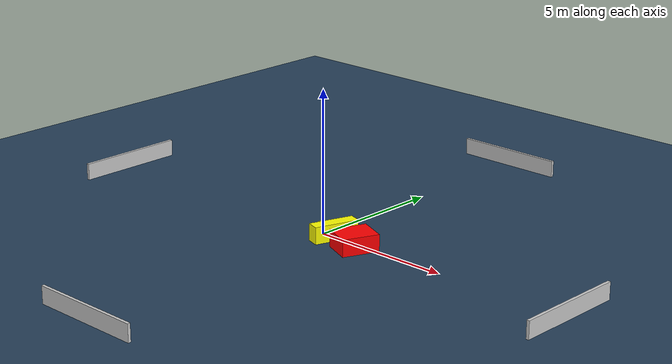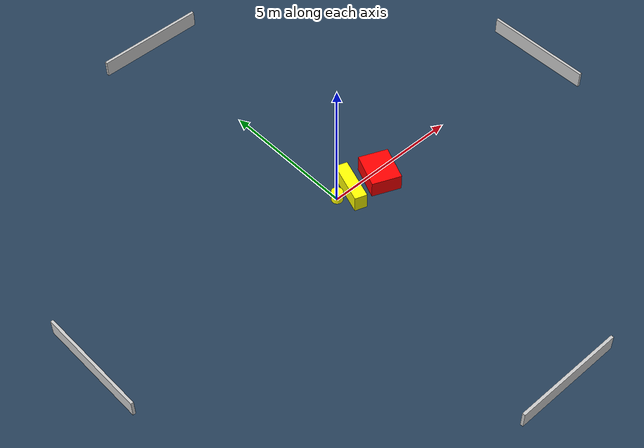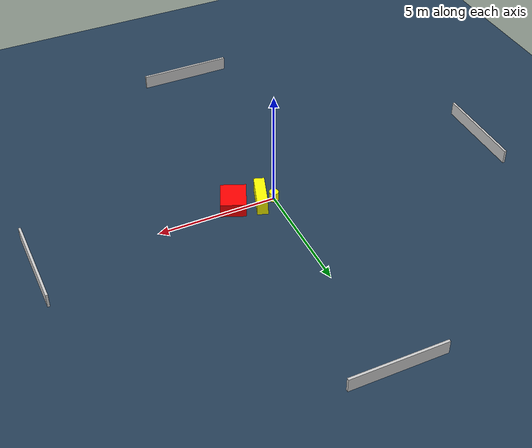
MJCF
<?xml version="1.0" ?>
<mujoco model="generated_environment">
  <option timestep="0.01" integrator="RK4" cone="elliptic"/>
  <default>
    <geom density="1"/>
  </default>
  <asset>
    <texture builtin="gradient" height="3072" name="skybox" rgb1="0.3 0.5 0.7" rgb2="0 0 0" type="skybox" width="512"/>
    <texture builtin="checker" height="300" name="groundplane" rgb1="0.2 0.3 0.4" rgb2="0.1 0.2 0.3" type="2d" width="300"/>
    <material name="groundplane" reflectance="0.2" texrepeat="5 5" texture="groundplane"/>
  </asset>
  <worldbody>
    <light dir="0 0 -1" directional="true" pos="0 0 1.5"/>
    <geom condim="3" friction="0.5 0.005 0.001" material="groundplane" name="floor" pos="0 0 0" size="0 0 0.05" type="plane"/>
    <body name="walls">
      <geom name="wall_1" condim="4" pos="-10.0 0.0 0.3" rgba="0.800000011920929 0.800000011920929 0.800000011920929 1.0" size="0.05 2.0 0.3" type="box"/>
      <geom name="wall_2" condim="4" pos="10.0 0.0 0.3" rgba="0.800000011920929 0.800000011920929 0.800000011920929 1.0" size="0.05 2.0 0.3" type="box"/>
      <geom name="wall_3" condim="4" pos="0.0 -10.0 0.3" rgba="0.800000011920929 0.800000011920929 0.800000011920929 1.0" size="2.0 0.05 0.3" type="box"/>
      <geom name="wall_4" condim="4" pos="0.0 10.0 0.3" rgba="0.800000011920929 0.800000011920929 0.800000011920929 1.0" size="2.0 0.05 0.3" type="box"/>
    </body>
    <body name="robot">
      <joint name="joint_x" type="slide" pos="0 0 0" axis="1 0 0"/>
      <joint name="joint_y" type="slide" pos="0 0 0" axis="0 1 0"/>
      <geom name="robot" type="cylinder" pos="0.0 0.0 0.2" size="0.2 0.2 0.0" mass="5.0" friction="1.0 0.005 0.0001" condim="4" rgba="1.0 1.0 0.0 1.0"/>
    </body>
    <body name="obstacle_1_movable">
      <geom name="obstacle_1_movable" condim="4" pos="0.55254714084446 -0.07910849408515741 0.3" euler="0 0 161.27974954904198" friction="0.0 0.005 0.001" rgba="1.0 1.0 0.0 1.0" size="0.22473031760327078 0.7961270296929068 0.3" type="box" mass="0.1"/>
      <joint type="free"/>
    </body>
    <body name="obstacle_2_static">
      <geom name="obstacle_2_static" condim="4" pos="1.678640363364735 -0.2970716983341772 0.3" euler="0 0 246.99184076768347" friction="0.0 0.005 0.001" rgba="1.0 0.0 0.0 1.0" size="0.6502363472496149 0.5327929782288569 0.3" type="box"/>
    </body>
  </worldbody>
  <actuator>
    <motor name="actuator_x" joint="joint_x" gear="1" ctrlrange="-1 1"/>
    <motor name="actuator_y" joint="joint_y" gear="1" ctrlrange="-1 1"/>
  </actuator>
</mujoco>
